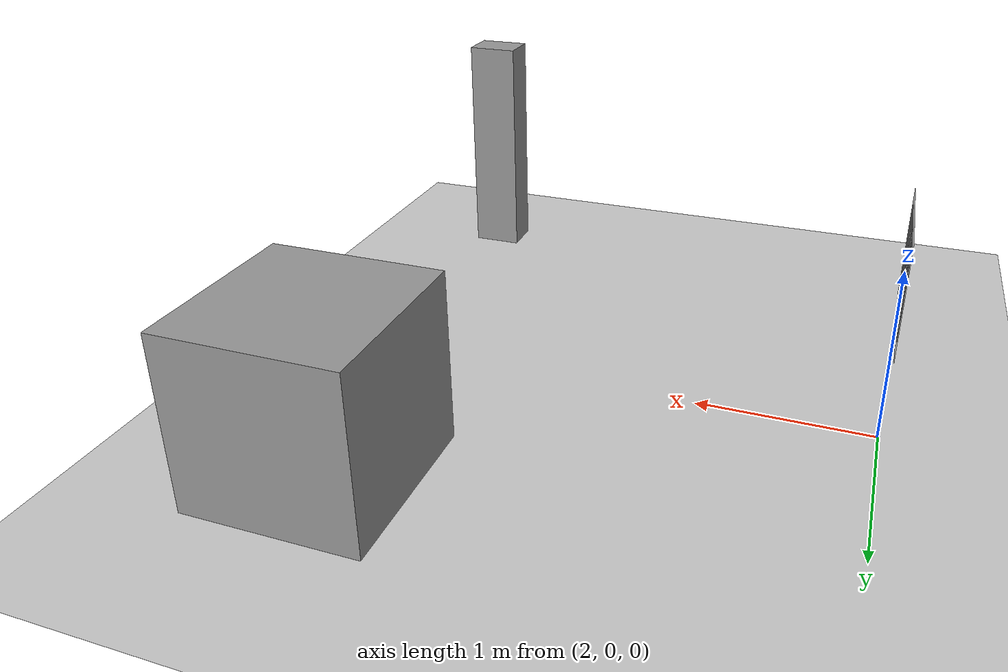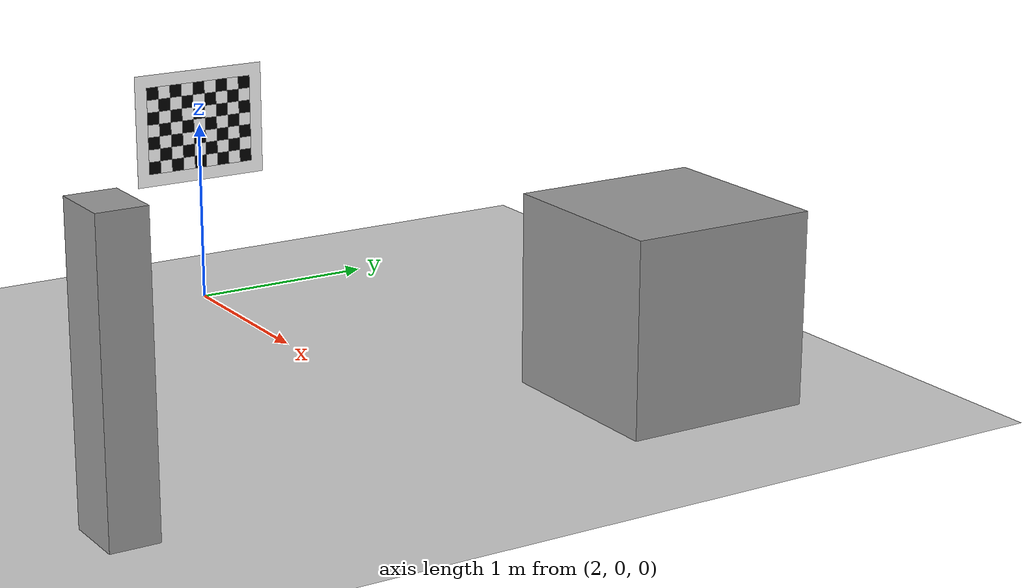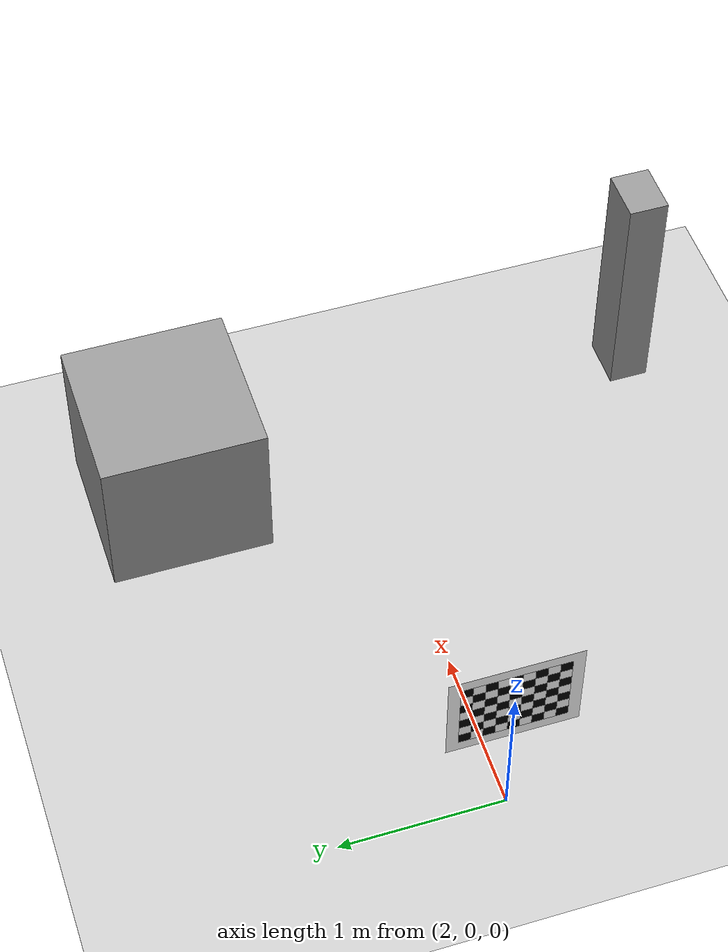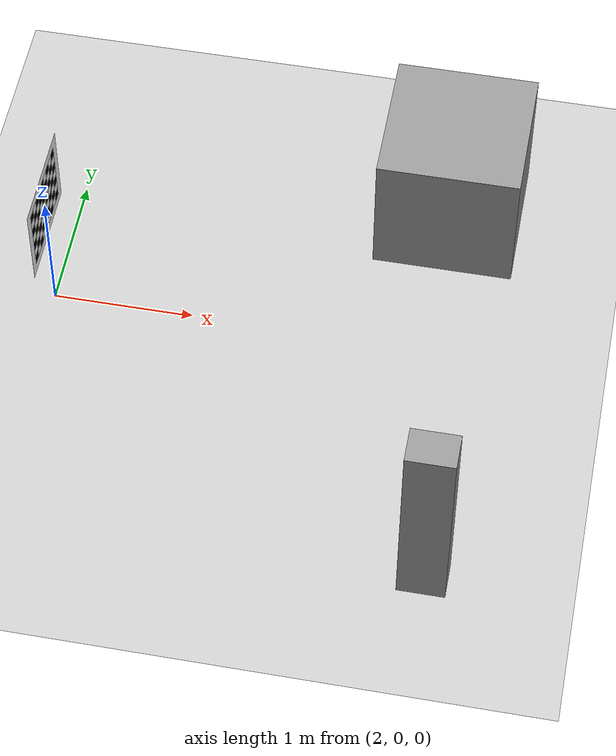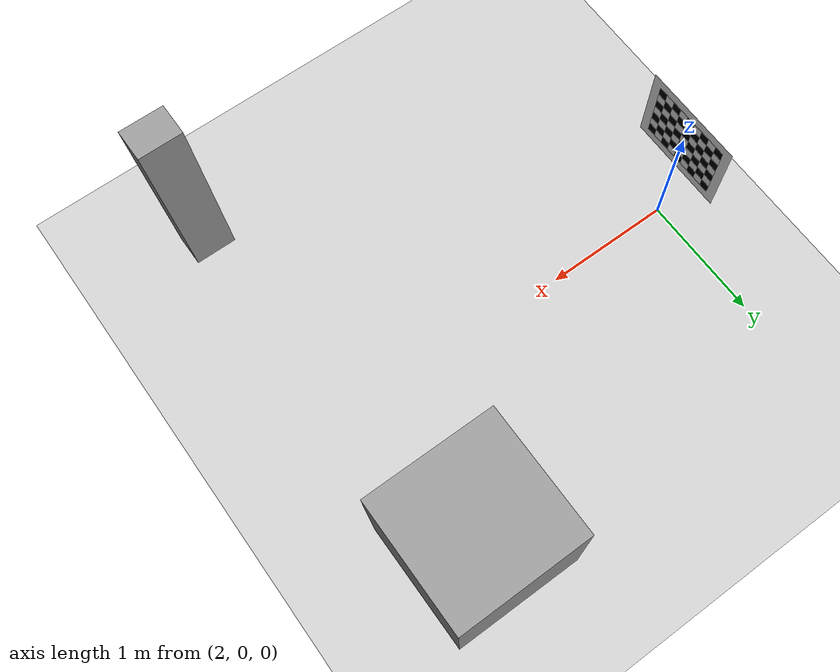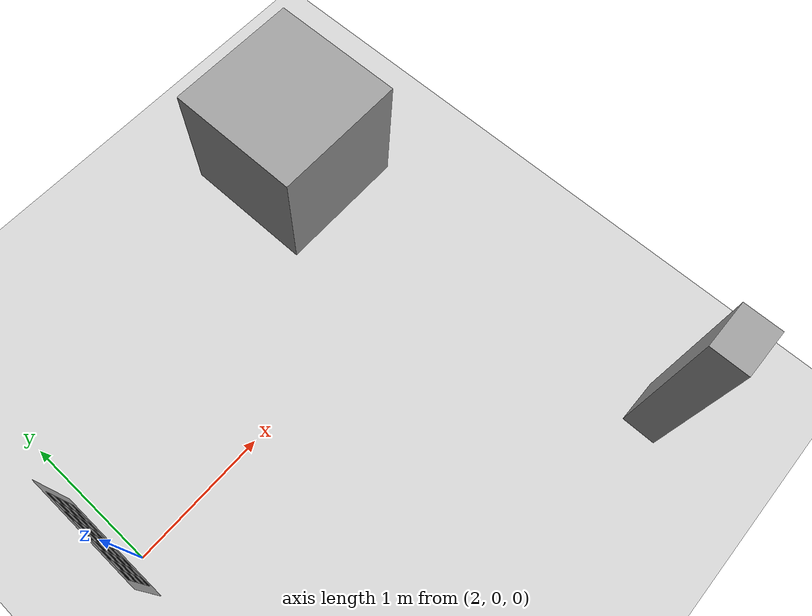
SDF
<sdf version="1.6">
 <world name="default">
  <light name="sun" type="directional">
   <pose>0 0 10 0 -0 0</pose>
   <diffuse>0.8 0.8 0.8 1</diffuse>
   <specular>0.2 0.2 0.2 1</specular>
   <attenuation>
    <range>1000</range>
    <constant>0.9</constant>
    <linear>0.01</linear>
    <quadratic>0.001</quadratic>
   </attenuation>
   <direction>-0.5 0.1 -0.9</direction>
  </light>
  <model name="ground_plane">
   <static>1</static>
   <link name="link">
    <collision name="collision">
     <geometry><plane><normal>0 0 1</normal><size>100 100</size></plane></geometry>
     <surface><friction><ode><mu>100</mu><mu2>50</mu2></ode></friction></surface>
    </collision>
    <visual name="visual">
     <cast_shadows>0</cast_shadows>
     <geometry><plane><normal>0 0 1</normal><size>100 100</size></plane></geometry>
     <material>
      <script><uri>file://media/materials/scripts/gazebo.material</uri><name>Gazebo/Grey</name></script>
     </material>
    </visual>
   </link>
  </model>
  <gravity>0 0 -9.8</gravity>
  <magnetic_field>6e-06 2.3e-05 -4.2e-05</magnetic_field>
  <atmosphere type="adiabatic"/>
  <physics name="default_physics" default="0" type="ode">
   <max_step_size>0.001</max_step_size>
   <real_time_factor>1</real_time_factor>
   <real_time_update_rate>1000</real_time_update_rate>
  </physics>
  <scene><ambient>0.4 0.4 0.4 1</ambient><background>0.7 0.7 0.7 1</background><shadows>1</shadows></scene>
  <spherical_coordinates>
   <surface_model>EARTH_WGS84</surface_model>
   <latitude_deg>0</latitude_deg>
   <longitude_deg>0</longitude_deg>
   <elevation>0</elevation>
   <heading_deg>0</heading_deg>
  </spherical_coordinates>
  <model name="checkerboard_7_9_0_07">
   <pose>2 0 1 0 1.57 0</pose>
   <static>1</static>
   <link name="checkerboard_7_9_0_07_body">
    <visual name="checker_0_0">
     <pose>-0.21 -0.28 0 0 -0 0</pose>
     <geometry><box><size>0.07 0.07 0.0002</size></box></geometry>
     <material>
      <ambient>0 0 0 1</ambient>
      <diffuse>0 0 0 1</diffuse>
      <specular>0 0 0 1</specular>
      <emissive>0 0 0 1</emissive>
     </material>
    </visual>
    <visual name="checker_0_1">
     <pose>-0.21 -0.21 0 0 -0 0</pose>
     <geometry><box><size>0.07 0.07 0.0002</size></box></geometry>
     <material>
      <ambient>1 1 1 1</ambient>
      <diffuse>1 1 1 1</diffuse>
      <specular>1 1 1 1</specular>
      <emissive>1 1 1 1</emissive>
     </material>
    </visual>
    <visual name="checker_0_2">
     <pose>-0.21 -0.14 0 0 -0 0</pose>
     <geometry><box><size>0.07 0.07 0.0002</size></box></geometry>
     <material>
      <ambient>0 0 0 1</ambient>
      <diffuse>0 0 0 1</diffuse>
      <specular>0 0 0 1</specular>
      <emissive>0 0 0 1</emissive>
     </material>
    </visual>
    <visual name="checker_0_3">
     <pose>-0.21 -0.07 0 0 -0 0</pose>
     <geometry><box><size>0.07 0.07 0.0002</size></box></geometry>
     <material>
      <ambient>1 1 1 1</ambient>
      <diffuse>1 1 1 1</diffuse>
      <specular>1 1 1 1</specular>
      <emissive>1 1 1 1</emissive>
     </material>
    </visual>
    <visual name="checker_0_4">
     <pose>-0.21 0 0 0 -0 0</pose>
     <geometry><box><size>0.07 0.07 0.0002</size></box></geometry>
     <material>
      <ambient>0 0 0 1</ambient>
      <diffuse>0 0 0 1</diffuse>
      <specular>0 0 0 1</specular>
      <emissive>0 0 0 1</emissive>
     </material>
    </visual>
    <visual name="checker_0_5">
     <pose>-0.21 0.07 0 0 -0 0</pose>
     <geometry><box><size>0.07 0.07 0.0002</size></box></geometry>
     <material>
      <ambient>1 1 1 1</ambient>
      <diffuse>1 1 1 1</diffuse>
      <specular>1 1 1 1</specular>
      <emissive>1 1 1 1</emissive>
     </material>
    </visual>
    <visual name="checker_0_6">
     <pose>-0.21 0.14 0 0 -0 0</pose>
     <geometry><box><size>0.07 0.07 0.0002</size></box></geometry>
     <material>
      <ambient>0 0 0 1</ambient>
      <diffuse>0 0 0 1</diffuse>
      <specular>0 0 0 1</specular>
      <emissive>0 0 0 1</emissive>
     </material>
    </visual>
    <visual name="checker_0_7">
     <pose>-0.21 0.21 0 0 -0 0</pose>
     <geometry><box><size>0.07 0.07 0.0002</size></box></geometry>
     <material>
      <ambient>1 1 1 1</ambient>
      <diffuse>1 1 1 1</diffuse>
      <specular>1 1 1 1</specular>
      <emissive>1 1 1 1</emissive>
     </material>
    </visual>
    <visual name="checker_0_8">
     <pose>-0.21 0.28 0 0 -0 0</pose>
     <geometry><box><size>0.07 0.07 0.0002</size></box></geometry>
     <material>
      <ambient>0 0 0 1</ambient>
      <diffuse>0 0 0 1</diffuse>
      <specular>0 0 0 1</specular>
      <emissive>0 0 0 1</emissive>
     </material>
    </visual>
    <visual name="checker_1_0">
     <pose>-0.14 -0.28 0 0 -0 0</pose>
     <geometry><box><size>0.07 0.07 0.0002</size></box></geometry>
     <material>
      <ambient>1 1 1 1</ambient>
      <diffuse>1 1 1 1</diffuse>
      <specular>1 1 1 1</specular>
      <emissive>1 1 1 1</emissive>
     </material>
    </visual>
    <visual name="checker_1_1">
     <pose>-0.14 -0.21 0 0 -0 0</pose>
     <geometry><box><size>0.07 0.07 0.0002</size></box></geometry>
     <material>
      <ambient>0 0 0 1</ambient>
      <diffuse>0 0 0 1</diffuse>
      <specular>0 0 0 1</specular>
      <emissive>0 0 0 1</emissive>
     </material>
    </visual>
    <visual name="checker_1_2">
     <pose>-0.14 -0.14 0 0 -0 0</pose>
     <geometry><box><size>0.07 0.07 0.0002</size></box></geometry>
     <material>
      <ambient>1 1 1 1</ambient>
      <diffuse>1 1 1 1</diffuse>
      <specular>1 1 1 1</specular>
      <emissive>1 1 1 1</emissive>
     </material>
    </visual>
    <visual name="checker_1_3">
     <pose>-0.14 -0.07 0 0 -0 0</pose>
     <geometry><box><size>0.07 0.07 0.0002</size></box></geometry>
     <material>
      <ambient>0 0 0 1</ambient>
      <diffuse>0 0 0 1</diffuse>
      <specular>0 0 0 1</specular>
      <emissive>0 0 0 1</emissive>
     </material>
    </visual>
    <visual name="checker_1_4">
     <pose>-0.14 0 0 0 -0 0</pose>
     <geometry><box><size>0.07 0.07 0.0002</size></box></geometry>
     <material>
      <ambient>1 1 1 1</ambient>
      <diffuse>1 1 1 1</diffuse>
      <specular>1 1 1 1</specular>
      <emissive>1 1 1 1</emissive>
     </material>
    </visual>
    <visual name="checker_1_5">
     <pose>-0.14 0.07 0 0 -0 0</pose>
     <geometry><box><size>0.07 0.07 0.0002</size></box></geometry>
     <material>
      <ambient>0 0 0 1</ambient>
      <diffuse>0 0 0 1</diffuse>
      <specular>0 0 0 1</specular>
      <emissive>0 0 0 1</emissive>
     </material>
    </visual>
    <visual name="checker_1_6">
     <pose>-0.14 0.14 0 0 -0 0</pose>
     <geometry><box><size>0.07 0.07 0.0002</size></box></geometry>
     <material>
      <ambient>1 1 1 1</ambient>
      <diffuse>1 1 1 1</diffuse>
      <specular>1 1 1 1</specular>
      <emissive>1 1 1 1</emissive>
     </material>
    </visual>
    <visual name="checker_1_7">
     <pose>-0.14 0.21 0 0 -0 0</pose>
     <geometry><box><size>0.07 0.07 0.0002</size></box></geometry>
     <material>
      <ambient>0 0 0 1</ambient>
      <diffuse>0 0 0 1</diffuse>
      <specular>0 0 0 1</specular>
      <emissive>0 0 0 1</emissive>
     </material>
    </visual>
    <visual name="checker_1_8">
     <pose>-0.14 0.28 0 0 -0 0</pose>
     <geometry><box><size>0.07 0.07 0.0002</size></box></geometry>
     <material>
      <ambient>1 1 1 1</ambient>
      <diffuse>1 1 1 1</diffuse>
      <specular>1 1 1 1</specular>
      <emissive>1 1 1 1</emissive>
     </material>
    </visual>
    <visual name="checker_2_0">
     <pose>-0.07 -0.28 0 0 -0 0</pose>
     <geometry><box><size>0.07 0.07 0.0002</size></box></geometry>
     <material>
      <ambient>0 0 0 1</ambient>
      <diffuse>0 0 0 1</diffuse>
      <specular>0 0 0 1</specular>
      <emissive>0 0 0 1</emissive>
     </material>
    </visual>
    <visual name="checker_2_1">
     <pose>-0.07 -0.21 0 0 -0 0</pose>
     <geometry><box><size>0.07 0.07 0.0002</size></box></geometry>
     <material>
      <ambient>1 1 1 1</ambient>
      <diffuse>1 1 1 1</diffuse>
      <specular>1 1 1 1</specular>
      <emissive>1 1 1 1</emissive>
     </material>
    </visual>
    <visual name="checker_2_2">
     <pose>-0.07 -0.14 0 0 -0 0</pose>
     <geometry><box><size>0.07 0.07 0.0002</size></box></geometry>
     <material>
      <ambient>0 0 0 1</ambient>
      <diffuse>0 0 0 1</diffuse>
      <specular>0 0 0 1</specular>
      <emissive>0 0 0 1</emissive>
     </material>
    </visual>
    <visual name="checker_2_3">
     <pose>-0.07 -0.07 0 0 -0 0</pose>
     <geometry><box><size>0.07 0.07 0.0002</size></box></geometry>
     <material>
      <ambient>1 1 1 1</ambient>
      <diffuse>1 1 1 1</diffuse>
      <specular>1 1 1 1</specular>
      <emissive>1 1 1 1</emissive>
     </material>
    </visual>
    <visual name="checker_2_4">
     <pose>-0.07 0 0 0 -0 0</pose>
     <geometry><box><size>0.07 0.07 0.0002</size></box></geometry>
     <material>
      <ambient>0 0 0 1</ambient>
      <diffuse>0 0 0 1</diffuse>
      <specular>0 0 0 1</specular>
      <emissive>0 0 0 1</emissive>
     </material>
    </visual>
    <visual name="checker_2_5">
     <pose>-0.07 0.07 0 0 -0 0</pose>
     <geometry><box><size>0.07 0.07 0.0002</size></box></geometry>
     <material>
      <ambient>1 1 1 1</ambient>
      <diffuse>1 1 1 1</diffuse>
      <specular>1 1 1 1</specular>
      <emissive>1 1 1 1</emissive>
     </material>
    </visual>
    <visual name="checker_2_6">
     <pose>-0.07 0.14 0 0 -0 0</pose>
     <geometry><box><size>0.07 0.07 0.0002</size></box></geometry>
     <material>
      <ambient>0 0 0 1</ambient>
      <diffuse>0 0 0 1</diffuse>
      <specular>0 0 0 1</specular>
      <emissive>0 0 0 1</emissive>
     </material>
    </visual>
    <visual name="checker_2_7">
     <pose>-0.07 0.21 0 0 -0 0</pose>
     <geometry><box><size>0.07 0.07 0.0002</size></box></geometry>
     <material>
      <ambient>1 1 1 1</ambient>
      <diffuse>1 1 1 1</diffuse>
      <specular>1 1 1 1</specular>
      <emissive>1 1 1 1</emissive>
     </material>
    </visual>
    <visual name="checker_2_8">
     <pose>-0.07 0.28 0 0 -0 0</pose>
     <geometry><box><size>0.07 0.07 0.0002</size></box></geometry>
     <material>
      <ambient>0 0 0 1</ambient>
      <diffuse>0 0 0 1</diffuse>
      <specular>0 0 0 1</specular>
      <emissive>0 0 0 1</emissive>
     </material>
    </visual>
    <visual name="checker_3_0">
     <pose>0 -0.28 0 0 -0 0</pose>
     <geometry><box><size>0.07 0.07 0.0002</size></box></geometry>
     <material>
      <ambient>1 1 1 1</ambient>
      <diffuse>1 1 1 1</diffuse>
      <specular>1 1 1 1</specular>
      <emissive>1 1 1 1</emissive>
     </material>
    </visual>
    <visual name="checker_3_1">
     <pose>0 -0.21 0 0 -0 0</pose>
     <geometry><box><size>0.07 0.07 0.0002</size></box></geometry>
     <material>
      <ambient>0 0 0 1</ambient>
      <diffuse>0 0 0 1</diffuse>
      <specular>0 0 0 1</specular>
      <emissive>0 0 0 1</emissive>
     </material>
    </visual>
    <visual name="checker_3_2">
     <pose>0 -0.14 0 0 -0 0</pose>
     <geometry><box><size>0.07 0.07 0.0002</size></box></geometry>
     <material>
      <ambient>1 1 1 1</ambient>
      <diffuse>1 1 1 1</diffuse>
      <specular>1 1 1 1</specular>
      <emissive>1 1 1 1</emissive>
     </material>
    </visual>
    <visual name="checker_3_3">
     <pose>0 -0.07 0 0 -0 0</pose>
     <geometry><box><size>0.07 0.07 0.0002</size></box></geometry>
     <material>
      <ambient>0 0 0 1</ambient>
      <diffuse>0 0 0 1</diffuse>
      <specular>0 0 0 1</specular>
      <emissive>0 0 0 1</emissive>
     </material>
    </visual>
    <visual name="checker_3_4">
     <geometry><box><size>0.07 0.07 0.0002</size></box></geometry>
     <material>
      <ambient>1 1 1 1</ambient>
      <diffuse>1 1 1 1</diffuse>
      <specular>1 1 1 1</specular>
      <emissive>1 1 1 1</emissive>
     </material>
    </visual>
    <visual name="checker_3_5">
     <pose>0 0.07 0 0 -0 0</pose>
     <geometry><box><size>0.07 0.07 0.0002</size></box></geometry>
     <material>
      <ambient>0 0 0 1</ambient>
      <diffuse>0 0 0 1</diffuse>
      <specular>0 0 0 1</specular>
      <emissive>0 0 0 1</emissive>
     </material>
    </visual>
    <visual name="checker_3_6">
     <pose>0 0.14 0 0 -0 0</pose>
     <geometry><box><size>0.07 0.07 0.0002</size></box></geometry>
     <material>
      <ambient>1 1 1 1</ambient>
      <diffuse>1 1 1 1</diffuse>
      <specular>1 1 1 1</specular>
      <emissive>1 1 1 1</emissive>
     </material>
    </visual>
    <visual name="checker_3_7">
     <pose>0 0.21 0 0 -0 0</pose>
     <geometry><box><size>0.07 0.07 0.0002</size></box></geometry>
     <material>
      <ambient>0 0 0 1</ambient>
      <diffuse>0 0 0 1</diffuse>
      <specular>0 0 0 1</specular>
      <emissive>0 0 0 1</emissive>
     </material>
    </visual>
    <visual name="checker_3_8">
     <pose>0 0.28 0 0 -0 0</pose>
     <geometry><box><size>0.07 0.07 0.0002</size></box></geometry>
     <material>
      <ambient>1 1 1 1</ambient>
      <diffuse>1 1 1 1</diffuse>
      <specular>1 1 1 1</specular>
      <emissive>1 1 1 1</emissive>
     </material>
    </visual>
    <visual name="checker_4_0">
     <pose>0.07 -0.28 0 0 -0 0</pose>
     <geometry><box><size>0.07 0.07 0.0002</size></box></geometry>
     <material>
      <ambient>0 0 0 1</ambient>
      <diffuse>0 0 0 1</diffuse>
      <specular>0 0 0 1</specular>
      <emissive>0 0 0 1</emissive>
     </material>
    </visual>
    <visual name="checker_4_1">
     <pose>0.07 -0.21 0 0 -0 0</pose>
     <geometry><box><size>0.07 0.07 0.0002</size></box></geometry>
     <material>
      <ambient>1 1 1 1</ambient>
      <diffuse>1 1 1 1</diffuse>
      <specular>1 1 1 1</specular>
      <emissive>1 1 1 1</emissive>
     </material>
    </visual>
    <visual name="checker_4_2">
     <pose>0.07 -0.14 0 0 -0 0</pose>
     <geometry><box><size>0.07 0.07 0.0002</size></box></geometry>
     <material>
      <ambient>0 0 0 1</ambient>
      <diffuse>0 0 0 1</diffuse>
      <specular>0 0 0 1</specular>
      <emissive>0 0 0 1</emissive>
     </material>
    </visual>
    <visual name="checker_4_3">
     <pose>0.07 -0.07 0 0 -0 0</pose>
     <geometry><box><size>0.07 0.07 0.0002</size></box></geometry>
     <material>
      <ambient>1 1 1 1</ambient>
      <diffuse>1 1 1 1</diffuse>
      <specular>1 1 1 1</specular>
      <emissive>1 1 1 1</emissive>
     </material>
    </visual>
    <visual name="checker_4_4">
     <pose>0.07 0 0 0 -0 0</pose>
     <geometry><box><size>0.07 0.07 0.0002</size></box></geometry>
     <material>
      <ambient>0 0 0 1</ambient>
      <diffuse>0 0 0 1</diffuse>
      <specular>0 0 0 1</specular>
      <emissive>0 0 0 1</emissive>
     </material>
    </visual>
    <visual name="checker_4_5">
     <pose>0.07 0.07 0 0 -0 0</pose>
     <geometry><box><size>0.07 0.07 0.0002</size></box></geometry>
     <material>
      <ambient>1 1 1 1</ambient>
      <diffuse>1 1 1 1</diffuse>
      <specular>1 1 1 1</specular>
      <emissive>1 1 1 1</emissive>
     </material>
    </visual>
    <visual name="checker_4_6">
     <pose>0.07 0.14 0 0 -0 0</pose>
     <geometry><box><size>0.07 0.07 0.0002</size></box></geometry>
     <material>
      <ambient>0 0 0 1</ambient>
      <diffuse>0 0 0 1</diffuse>
      <specular>0 0 0 1</specular>
      <emissive>0 0 0 1</emissive>
     </material>
    </visual>
    <visual name="checker_4_7">
     <pose>0.07 0.21 0 0 -0 0</pose>
     <geometry><box><size>0.07 0.07 0.0002</size></box></geometry>
     <material>
      <ambient>1 1 1 1</ambient>
      <diffuse>1 1 1 1</diffuse>
      <specular>1 1 1 1</specular>
      <emissive>1 1 1 1</emissive>
     </material>
    </visual>
    <visual name="checker_4_8">
     <pose>0.07 0.28 0 0 -0 0</pose>
     <geometry><box><size>0.07 0.07 0.0002</size></box></geometry>
     <material>
      <ambient>0 0 0 1</ambient>
      <diffuse>0 0 0 1</diffuse>
      <specular>0 0 0 1</specular>
      <emissive>0 0 0 1</emissive>
     </material>
    </visual>
    <visual name="checker_5_0">
     <pose>0.14 -0.28 0 0 -0 0</pose>
     <geometry><box><size>0.07 0.07 0.0002</size></box></geometry>
     <material>
      <ambient>1 1 1 1</ambient>
      <diffuse>1 1 1 1</diffuse>
      <specular>1 1 1 1</specular>
      <emissive>1 1 1 1</emissive>
     </material>
    </visual>
    <visual name="checker_5_1">
     <pose>0.14 -0.21 0 0 -0 0</pose>
     <geometry><box><size>0.07 0.07 0.0002</size></box></geometry>
     <material>
      <ambient>0 0 0 1</ambient>
      <diffuse>0 0 0 1</diffuse>
      <specular>0 0 0 1</specular>
      <emissive>0 0 0 1</emissive>
     </material>
    </visual>
    <visual name="checker_5_2">
     <pose>0.14 -0.14 0 0 -0 0</pose>
     <geometry><box><size>0.07 0.07 0.0002</size></box></geometry>
     <material>
      <ambient>1 1 1 1</ambient>
      <diffuse>1 1 1 1</diffuse>
      <specular>1 1 1 1</specular>
      <emissive>1 1 1 1</emissive>
     </material>
    </visual>
    <visual name="checker_5_3">
     <pose>0.14 -0.07 0 0 -0 0</pose>
     <geometry><box><size>0.07 0.07 0.0002</size></box></geometry>
     <material>
      <ambient>0 0 0 1</ambient>
      <diffuse>0 0 0 1</diffuse>
      <specular>0 0 0 1</specular>
      <emissive>0 0 0 1</emissive>
     </material>
    </visual>
    <visual name="checker_5_4">
     <pose>0.14 0 0 0 -0 0</pose>
     <geometry><box><size>0.07 0.07 0.0002</size></box></geometry>
     <material>
      <ambient>1 1 1 1</ambient>
      <diffuse>1 1 1 1</diffuse>
      <specular>1 1 1 1</specular>
      <emissive>1 1 1 1</emissive>
     </material>
    </visual>
    <visual name="checker_5_5">
     <pose>0.14 0.07 0 0 -0 0</pose>
     <geometry><box><size>0.07 0.07 0.0002</size></box></geometry>
     <material>
      <ambient>0 0 0 1</ambient>
      <diffuse>0 0 0 1</diffuse>
      <specular>0 0 0 1</specular>
      <emissive>0 0 0 1</emissive>
     </material>
    </visual>
    <visual name="checker_5_6">
     <pose>0.14 0.14 0 0 -0 0</pose>
     <geometry><box><size>0.07 0.07 0.0002</size></box></geometry>
     <material>
      <ambient>1 1 1 1</ambient>
      <diffuse>1 1 1 1</diffuse>
      <specular>1 1 1 1</specular>
      <emissive>1 1 1 1</emissive>
     </material>
    </visual>
    <visual name="checker_5_7">
     <pose>0.14 0.21 0 0 -0 0</pose>
     <geometry><box><size>0.07 0.07 0.0002</size></box></geometry>
     <material>
      <ambient>0 0 0 1</ambient>
      <diffuse>0 0 0 1</diffuse>
      <specular>0 0 0 1</specular>
      <emissive>0 0 0 1</emissive>
     </material>
    </visual>
    <visual name="checker_5_8">
     <pose>0.14 0.28 0 0 -0 0</pose>
     <geometry><box><size>0.07 0.07 0.0002</size></box></geometry>
     <material>
      <ambient>1 1 1 1</ambient>
      <diffuse>1 1 1 1</diffuse>
      <specular>1 1 1 1</specular>
      <emissive>1 1 1 1</emissive>
     </material>
    </visual>
    <visual name="checker_6_0">
     <pose>0.21 -0.28 0 0 -0 0</pose>
     <geometry><box><size>0.07 0.07 0.0002</size></box></geometry>
     <material>
      <ambient>0 0 0 1</ambient>
      <diffuse>0 0 0 1</diffuse>
      <specular>0 0 0 1</specular>
      <emissive>0 0 0 1</emissive>
     </material>
    </visual>
    <visual name="checker_6_1">
     <pose>0.21 -0.21 0 0 -0 0</pose>
     <geometry><box><size>0.07 0.07 0.0002</size></box></geometry>
     <material>
      <ambient>1 1 1 1</ambient>
      <diffuse>1 1 1 1</diffuse>
      <specular>1 1 1 1</specular>
      <emissive>1 1 1 1</emissive>
     </material>
    </visual>
    <visual name="checker_6_2">
     <pose>0.21 -0.14 0 0 -0 0</pose>
     <geometry><box><size>0.07 0.07 0.0002</size></box></geometry>
     <material>
      <ambient>0 0 0 1</ambient>
      <diffuse>0 0 0 1</diffuse>
      <specular>0 0 0 1</specular>
      <emissive>0 0 0 1</emissive>
     </material>
    </visual>
    <visual name="checker_6_3">
     <pose>0.21 -0.07 0 0 -0 0</pose>
     <geometry><box><size>0.07 0.07 0.0002</size></box></geometry>
     <material>
      <ambient>1 1 1 1</ambient>
      <diffuse>1 1 1 1</diffuse>
      <specular>1 1 1 1</specular>
      <emissive>1 1 1 1</emissive>
     </material>
    </visual>
    <visual name="checker_6_4">
     <pose>0.21 0 0 0 -0 0</pose>
     <geometry><box><size>0.07 0.07 0.0002</size></box></geometry>
     <material>
      <ambient>0 0 0 1</ambient>
      <diffuse>0 0 0 1</diffuse>
      <specular>0 0 0 1</specular>
      <emissive>0 0 0 1</emissive>
     </material>
    </visual>
    <visual name="checker_6_5">
     <pose>0.21 0.07 0 0 -0 0</pose>
     <geometry><box><size>0.07 0.07 0.0002</size></box></geometry>
     <material>
      <ambient>1 1 1 1</ambient>
      <diffuse>1 1 1 1</diffuse>
      <specular>1 1 1 1</specular>
      <emissive>1 1 1 1</emissive>
     </material>
    </visual>
    <visual name="checker_6_6">
     <pose>0.21 0.14 0 0 -0 0</pose>
     <geometry><box><size>0.07 0.07 0.0002</size></box></geometry>
     <material>
      <ambient>0 0 0 1</ambient>
      <diffuse>0 0 0 1</diffuse>
      <specular>0 0 0 1</specular>
      <emissive>0 0 0 1</emissive>
     </material>
    </visual>
    <visual name="checker_6_7">
     <pose>0.21 0.21 0 0 -0 0</pose>
     <geometry><box><size>0.07 0.07 0.0002</size></box></geometry>
     <material>
      <ambient>1 1 1 1</ambient>
      <diffuse>1 1 1 1</diffuse>
      <specular>1 1 1 1</specular>
      <emissive>1 1 1 1</emissive>
     </material>
    </visual>
    <visual name="checker_6_8">
     <pose>0.21 0.28 0 0 -0 0</pose>
     <geometry><box><size>0.07 0.07 0.0002</size></box></geometry>
     <material>
      <ambient>0 0 0 1</ambient>
      <diffuse>0 0 0 1</diffuse>
      <specular>0 0 0 1</specular>
      <emissive>0 0 0 1</emissive>
     </material>
    </visual>
    <visual name="checker_backdrop">
     <geometry><box><size>0.63 0.77 0.0001</size></box></geometry>
     <material>
      <ambient>1 1 1 1</ambient>
      <diffuse>1 1 1 1</diffuse>
      <specular>1 1 1 1</specular>
      <emissive>1 1 1 1</emissive>
     </material>
    </visual>
    <collision name="collision"><geometry><box><size>0.63 0.77 0.0001</size></box></geometry></collision>
   </link>
   <plugin name="checkerboard_ctrl" filename="libcheckerboard_ctrl.so"/>
  </model>
  <model name="unit_box">
   <pose>4.669 1.23813 0.5 0 0 -1.1e-05</pose>
   <link name="link">
    <inertial>
     <mass>1</mass>
     <inertia>
      <ixx>0.166667</ixx>
      <ixy>0</ixy>
      <ixz>0</ixz>
      <iyy>0.166667</iyy>
      <iyz>0</iyz>
      <izz>0.166667</izz>
     </inertia>
    </inertial>
    <collision name="collision"><geometry><box><size>0.999999 1 1</size></box></geometry></collision>
    <visual name="visual">
     <geometry><box><size>0.999999 1 1</size></box></geometry>
     <material>
      <script><name>Gazebo/Grey</name><uri>file://media/materials/scripts/gazebo.material</uri></script>
     </material>
    </visual>
   </link>
  </model>
  <model name="unit_box_clone">
   <pose>4.9318 -1.84168 0.755345 -1e-06 1e-06 0.000301</pose>
   <link name="link">
    <inertial>
     <mass>1</mass>
     <inertia>
      <ixx>0.166667</ixx>
      <ixy>0</ixy>
      <ixz>0</ixz>
      <iyy>0.166667</iyy>
      <iyz>0</iyz>
      <izz>0.166667</izz>
     </inertia>
    </inertial>
    <collision name="collision"><geometry><box><size>0.325962 0.244728 1.51069</size></box></geometry></collision>
    <visual name="visual">
     <geometry><box><size>0.325962 0.244728 1.51069</size></box></geometry>
     <material>
      <script><name>Gazebo/Grey</name><uri>file://media/materials/scripts/gazebo.material</uri></script>
     </material>
    </visual>
   </link>
  </model>
 </world>
</sdf>
